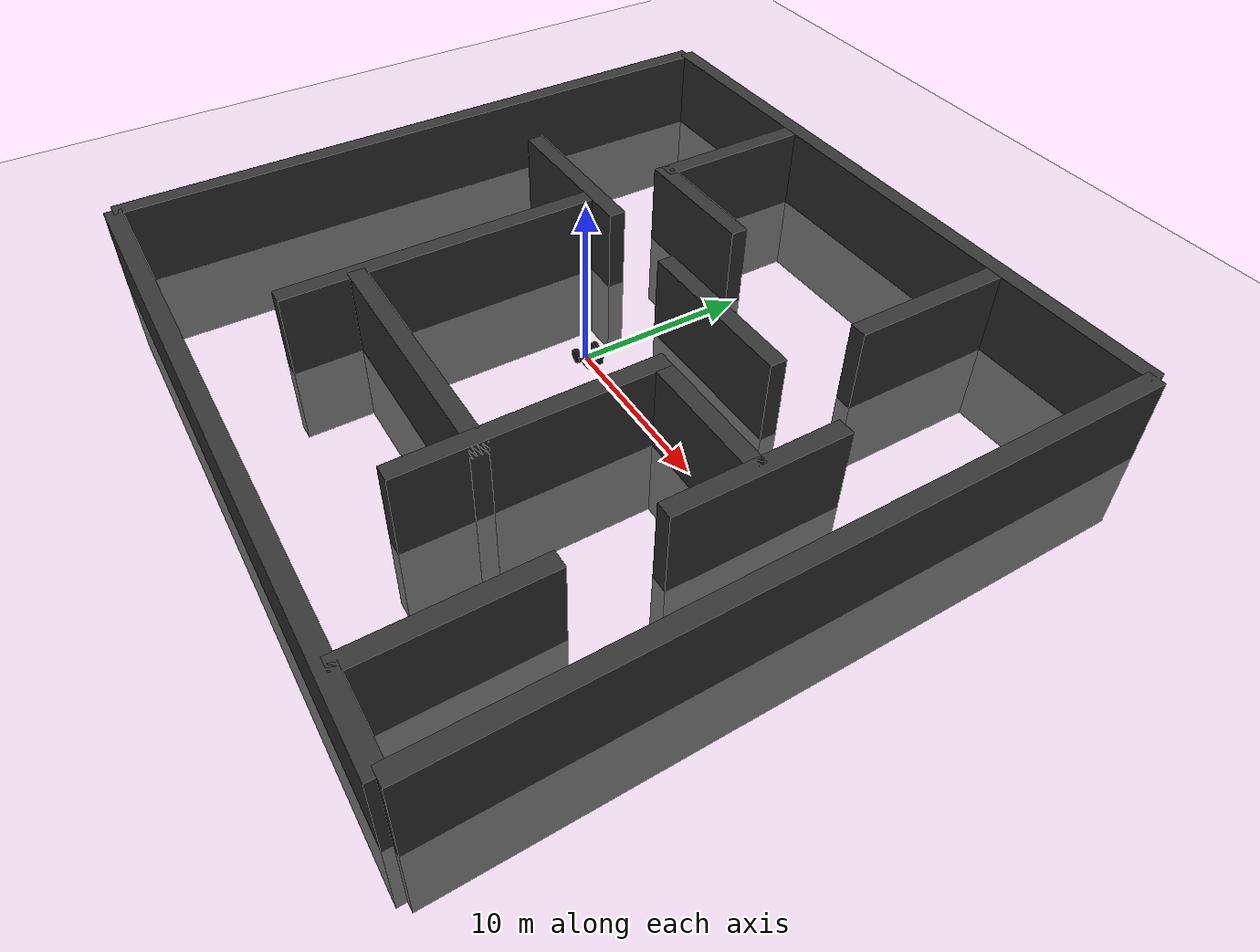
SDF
<?xml version="1.0" ?>
<sdf version='1.9'>
  <world name='test_world'>
    <physics name='1ms' type='ignored'>
      <max_step_size>0.001</max_step_size>
      <real_time_factor>1</real_time_factor>
      <real_time_update_rate>1000</real_time_update_rate>
    </physics>
    <plugin name='ignition::gazebo::systems::Physics' filename='ignition-gazebo-physics-system'/>
    <plugin name='ignition::gazebo::systems::UserCommands' filename='ignition-gazebo-user-commands-system'/>
    <plugin name='ignition::gazebo::systems::SceneBroadcaster' filename='ignition-gazebo-scene-broadcaster-system'/>
    <plugin name='ignition::gazebo::systems::Imu' filename='ignition-gazebo-imu-system'/>
    <plugin name='ignition::gazebo::systems::Sensors' filename='ignition-gazebo-sensors-system'>
      <render_engine>ogre2</render_engine>
    </plugin>
    <plugin name='ignition::gazebo::systems::Contact' filename='ignition-gazebo-contact-system'/>

    <gravity>0 0 -9.8</gravity>
    <magnetic_field>6e-06 2.3e-05 -4.2e-05</magnetic_field>
    <atmosphere type='adiabatic'/>
    <scene>
      <ambient>0.4 0.4 0.4 1</ambient>
      <background>0.7 0.7 0.7 1</background>
      <shadows>true</shadows>
    </scene>

    <model name='ground_plane'>
      <static>true</static>
      <link name='link'>
        <collision name='collision'>
          <geometry>
            <plane>
              <normal>0 0 1</normal>
              <size>1 1</size>
            </plane>
          </geometry>
          <surface>
            <friction>
              <ode/>
            </friction>
            <bounce/>
            <contact/>
          </surface>
        </collision>
        <visual name='visual'>
          <geometry>
            <plane>
              <normal>0 0 1</normal>
              <size>100 100</size>
            </plane>
          </geometry>
          <material>
            <ambient>0.8 0.8 0.8 1</ambient>
            <diffuse>0.8 0.8 0.8 1</diffuse>
            <specular>0.8 0.8 0.8 1</specular>
          </material>
        </visual>
        <pose>0 0 0 0 -0 0</pose>
        <inertial>
          <pose>0 0 0 0 -0 0</pose>
          <mass>1</mass>
          <inertia>
            <ixx>1</ixx>
            <ixy>0</ixy>
            <ixz>0</ixz>
            <iyy>1</iyy>
            <iyz>0</iyz>
            <izz>1</izz>
          </inertia>
        </inertial>
        <enable_wind>false</enable_wind>
      </link>
      <pose>0 0 0 0 -0 0</pose>
      <self_collide>false</self_collide>
    </model>
    <model name='f1d2' canonical_link='chassis'>
      <pose>0 0 0 0 0 0</pose>
      <link name='chassis'>
        <pose>0.5 0 0.4 0 -0 0</pose>
        <inertial>
          <mass>1.14395</mass>
          <inertia>
            <ixx>0.126164</ixx>
            <ixy>0</ixy>
            <ixz>0</ixz>
            <iyy>0.41651</iyy>
            <iyz>0</iyz>
            <izz>0.481014</izz>
          </inertia>
          <pose>0 0 0 0 -0 0</pose>
        </inertial>
        <visual name='visual'>
          <geometry>
            <box>
              <size>1 1 0.5</size>
            </box>
          </geometry>
          <material>
            <ambient>0.1 0.1 0.1 1</ambient>
            <diffuse>0.1 0.1 0.1 1</diffuse>
            <specular>0.1 0.1 0.1 1</specular>
          </material>
        </visual>
        <collision name='collision'>
          <geometry>
            <box>
              <size>1 1 0.5</size>
            </box>
          </geometry>
          <surface>
            <friction>
              <ode/>
            </friction>
            <bounce/>
            <contact/>
          </surface>
        </collision>
        <sensor name='imu_sensor' type='imu'>
          <pose>0 0 0 0 -0 0</pose>
          <topic>imu</topic>
          <update_rate>1</update_rate>
          <enable_metrics>false</enable_metrics>
          <imu>
            <orientation_reference_frame>
              <localization>CUSTOM</localization>
              <custom_rpy>0 0 0</custom_rpy>
              <grav_dir_x>1 0 0</grav_dir_x>
            </orientation_reference_frame>
            <angular_velocity>
              <x>
                <noise type='none'>
                  <mean>0</mean>
                  <stddev>0</stddev>
                  <bias_mean>0</bias_mean>
                  <bias_stddev>0</bias_stddev>
                  <dynamic_bias_stddev>0</dynamic_bias_stddev>
                  <dynamic_bias_correlation_time>0</dynamic_bias_correlation_time>
                  <precision>0</precision>
                </noise>
              </x>
              <y>
                <noise type='none'>
                  <mean>0</mean>
                  <stddev>0</stddev>
                  <bias_mean>0</bias_mean>
                  <bias_stddev>0</bias_stddev>
                  <dynamic_bias_stddev>0</dynamic_bias_stddev>
                  <dynamic_bias_correlation_time>0</dynamic_bias_correlation_time>
                  <precision>0</precision>
                </noise>
              </y>
              <z>
                <noise type='none'>
                  <mean>0</mean>
                  <stddev>0</stddev>
                  <bias_mean>0</bias_mean>
                  <bias_stddev>0</bias_stddev>
                  <dynamic_bias_stddev>0</dynamic_bias_stddev>
                  <dynamic_bias_correlation_time>0</dynamic_bias_correlation_time>
                  <precision>0</precision>
                </noise>
              </z>
            </angular_velocity>
            <linear_acceleration>
              <x>
                <noise type='none'>
                  <mean>0</mean>
                  <stddev>0</stddev>
                  <bias_mean>0</bias_mean>
                  <bias_stddev>0</bias_stddev>
                  <dynamic_bias_stddev>0</dynamic_bias_stddev>
                  <dynamic_bias_correlation_time>0</dynamic_bias_correlation_time>
                  <precision>0</precision>
                </noise>
              </x>
              <y>
                <noise type='none'>
                  <mean>0</mean>
                  <stddev>0</stddev>
                  <bias_mean>0</bias_mean>
                  <bias_stddev>0</bias_stddev>
                  <dynamic_bias_stddev>0</dynamic_bias_stddev>
                  <dynamic_bias_correlation_time>0</dynamic_bias_correlation_time>
                  <precision>0</precision>
                </noise>
              </y>
              <z>
                <noise type='none'>
                  <mean>0</mean>
                  <stddev>0</stddev>
                  <bias_mean>0</bias_mean>
                  <bias_stddev>0</bias_stddev>
                  <dynamic_bias_stddev>0</dynamic_bias_stddev>
                  <dynamic_bias_correlation_time>0</dynamic_bias_correlation_time>
                  <precision>0</precision>
                </noise>
              </z>
            </linear_acceleration>
            <enable_orientation>true</enable_orientation>
          </imu>
        </sensor>
        <enable_wind>false</enable_wind>
      </link>
      <link name='left_wheel'>
        <pose>-0 0.6 0.4 -1.5707 -0 0</pose>
        <inertial>
          <mass>2</mass>
          <inertia>
            <ixx>0.145</ixx>
            <ixy>0</ixy>
            <ixz>0</ixz>
            <iyy>0.145</iyy>
            <iyz>0</iyz>
            <izz>0.125</izz>
          </inertia>
          <pose>0 0 0 0 -0 0</pose>
        </inertial>
        <visual name='visual'>
          <geometry>
            <cylinder>
              <radius>0.4</radius>
              <length>0.2</length>
            </cylinder>
          </geometry>
          <material>
            <ambient>0.1 0.1 0.1 1</ambient>
            <diffuse>0.1 0.1 0.1 1</diffuse>
            <specular>0.1 0.1 0.1 1</specular>
          </material>
        </visual>
        <collision name='collision'>
          <geometry>
            <cylinder>
              <radius>0.4</radius>
              <length>0.2</length>
            </cylinder>
          </geometry>
          <surface>
            <friction>
              <ode/>
            </friction>
            <bounce/>
            <contact/>
          </surface>
        </collision>
        <enable_wind>false</enable_wind>
      </link>
      <link name='right_wheel'>
        <pose>-0 -0.6 0.4 -1.5707 -0 0</pose>
        <inertial>
          <mass>1</mass>
          <inertia>
            <ixx>0.145832</ixx>
            <ixy>0</ixy>
            <ixz>0</ixz>
            <iyy>0.145832</iyy>
            <iyz>0</iyz>
            <izz>0.125</izz>
          </inertia>
          <pose>0 0 0 0 -0 0</pose>
        </inertial>
        <visual name='visual'>
          <geometry>
            <cylinder>
              <radius>0.4</radius>
              <length>0.2</length>
            </cylinder>
          </geometry>
          <material>
            <ambient>0.1 0.1 0.1 1</ambient>
            <diffuse>0.1 0.1 0.1 1</diffuse>
            <specular>0.1 0.1 0.1 1</specular>
          </material>
        </visual>
        <collision name='collision'>
          <geometry>
            <cylinder>
              <radius>0.4</radius>
              <length>0.2</length>
            </cylinder>
          </geometry>
          <surface>
            <friction>
              <ode/>
            </friction>
            <bounce/>
            <contact/>
          </surface>
        </collision>
        <enable_wind>false</enable_wind>
      </link>

      <joint name="lidar_box_joint" type="fixed">
        <parent>chassis</parent>
        <child>lidar_box</child>
      </joint>

      <frame name='lidar_box_frame' attached_to='chassis'>
        <pose>0.0 0 0.3 0 0 0</pose>
      </frame>
      <link name='lidar_box'>
        <pose relative_to='lidar_box_frame'/>

        <static>true</static>
        <inertial>
          <mass>0.3</mass>
          <inertia>
            <ixx>0.01</ixx>
            <ixy>0</ixy>
            <ixz>0</ixz>
            <iyy>0.04</iyy>
            <iyz>0</iyz>
            <izz>0.04</izz>
          </inertia>
          <pose>0 0 0 0 -0 0</pose>
        </inertial>
        <visual name='visual'>
          <geometry>
            <box>
              <size>0.1 0.1 0.1</size>
            </box>
          </geometry>
          <material>
            <ambient>0 0 1 1</ambient>
            <diffuse>0 0 1 1</diffuse>
            <specular>0 0 1 1</specular>
          </material>
        </visual>
        <collision name='collision'>
          <geometry>
            <box>
              <size>0.1 0.1 0.1</size>
            </box>
          </geometry>
          <surface>
            <friction>
              <ode/>
            </friction>
            <bounce/>
            <contact/>
          </surface>
        </collision>
        <sensor name='gpu_lidar' type='gpu_lidar'>

          <topic>scan</topic>
          <update_rate>10</update_rate>
          <enable_metrics>false</enable_metrics>
          <lidar>
            <scan>
              <horizontal>
                <samples>640</samples>
                <resolution>1</resolution>
                <min_angle>-2.355</min_angle>
                <max_angle>2.355</max_angle>
              </horizontal>
              <vertical>
                <samples>1</samples>
                <min_angle>0</min_angle>
                <max_angle>0</max_angle>
                <resolution>0.01</resolution>
              </vertical>
            </scan>
            <range>
              <min>0.08</min>
              <max>30</max>
              <resolution>0.01</resolution>
            </range>
            <noise>
              <type>none</type>
              <mean>0</mean>
              <stddev>0</stddev>
            </noise>
            <visibility_mask>4294967295</visibility_mask>
          </lidar>
        </sensor>

    </link>
    <joint name="camera_box_joint" type="fixed">
        <parent>chassis</parent>
        <child>camera_box</child>
    </joint>
    <frame name='camera_box_frame' attached_to='chassis'>
        <pose>0.5 0 0.15 0 0 0</pose>
    </frame>
    <link name='camera_box'>
        <pose relative_to='camera_box_frame'/>
        <static>true</static>
        <inertial>
          <mass>0.3</mass>
          <inertia>
            <ixx>0.01</ixx>
            <ixy>0</ixy>
            <ixz>0</ixz>
            <iyy>0.04</iyy>
            <iyz>0</iyz>
            <izz>0.04</izz>
          </inertia>
          <pose>0 0 0 0 -0 0</pose>
        </inertial>
        <visual name='visual'>
          <geometry>
            <box>
              <size>0.05 0.15 0.05</size>
            </box>
          </geometry>
          <material>
            <ambient>0 0 1 1</ambient>
            <diffuse>0 0 1 1</diffuse>
            <specular>0 0 1 1</specular>
          </material>
        </visual>
        <collision name='collision'>
          <geometry>
            <box>
              <size>0.05 0.15 0.05</size>
            </box>
          </geometry>
          <surface>
            <friction>
              <ode/>
            </friction>
            <bounce/>
            <contact/>
          </surface>
        </collision>
        <sensor name='camera' type='camera'>
          <topic>/camera_front/image_raw</topic>
          <update_rate>10</update_rate>
          <enable_metrics>false</enable_metrics>
          <camera name='__default__'>
            <pose>0 0 0 0 -0 0</pose>
            <horizontal_fov>1.396261</horizontal_fov>
            <image>
              <width>600</width>
              <height>600</height>
              <format>RGB_INT8</format>
              <anti_aliasing>4</anti_aliasing>
            </image>
            <camera_info_topic>__default__</camera_info_topic>
            <trigger_topic></trigger_topic>
            <triggered>false</triggered>
            <clip>
              <near>0.02</near>
              <far>300</far>
            </clip>
            <save enabled='false'>
              <path>__default__</path>
            </save>
            <visibility_mask>4294967295</visibility_mask>
            <noise>
              <type>none</type>
              <mean>0</mean>
              <stddev>0</stddev>
            </noise>
            <distortion>
              <k1>0</k1>
              <k2>0</k2>
              <k3>0</k3>
              <p1>0</p1>
              <p2>0</p2>
              <center>0.5 0.5</center>
            </distortion>
            <lens>
              <type>stereographic</type>
              <scale_to_hfov>true</scale_to_hfov>
              <cutoff_angle>1.5708</cutoff_angle>
              <env_texture_size>256</env_texture_size>
            </lens>
            <optical_frame_id></optical_frame_id>
          </camera>
        </sensor>
        <sensor name='depth_camera' type='depth_camera'>
          <topic>/camera_front/depth_image_raw</topic>
          <update_rate>10</update_rate>
          <enable_metrics>false</enable_metrics>
          <camera name='__default__'>
            <pose>0 0 0 0 -0 0</pose>
            <horizontal_fov>1.046</horizontal_fov>
            <image>
              <width>320</width>
              <height>240</height>
              <format>R_FLOAT32</format>
              <anti_aliasing>4</anti_aliasing>
            </image>
            <camera_info_topic>__default__</camera_info_topic>
            <trigger_topic></trigger_topic>
            <triggered>false</triggered>
            <clip>
              <near>0.1</near>
              <far>100</far>
            </clip>
            <save enabled='false'>
              <path>__default__</path>
            </save>
            <visibility_mask>4294967295</visibility_mask>
            <noise>
              <type>none</type>
              <mean>0</mean>
              <stddev>0</stddev>
            </noise>
            <distortion>
              <k1>0</k1>
              <k2>0</k2>
              <k3>0</k3>
              <p1>0</p1>
              <p2>0</p2>
              <center>0.5 0.5</center>
            </distortion>
            <lens>
              <type>stereographic</type>
              <scale_to_hfov>true</scale_to_hfov>
              <cutoff_angle>1.5708</cutoff_angle>
              <env_texture_size>256</env_texture_size>
            </lens>
            <optical_frame_id></optical_frame_id>
          </camera>
        </sensor>

    </link>

      <frame name='caster_frame' attached_to='chassis'>
        <pose>0.3 0 -0.2 0 0 0</pose>
      </frame>
      <link name='caster'>
        <pose relative_to='caster_frame'/>
        <inertial>
          <mass>1</mass>
          <inertia>
            <ixx>0.1</ixx>

            <ixy>0</ixy>
            <ixz>0</ixz>
            <iyy>0.1</iyy>
            <iyz>0</iyz>
            <izz>0.1</izz>
          </inertia>
          <pose>0 0 0 0 -0 0</pose>
        </inertial>
        <visual name='visual'>
          <geometry>
            <sphere>
              <radius>0.2</radius>
            </sphere>
          </geometry>
          <material>
            <ambient>0.1 0.1 0.1 1</ambient>
            <diffuse>0.1 0.1 0.1 1</diffuse>
            <specular>0.1 0.1 0.1 1</specular>
          </material>
        </visual>
        <collision name='collision'>
          <geometry>
            <sphere>
              <radius>0.2</radius>
            </sphere>
          </geometry>
          <surface>
            <friction>
              <ode/>
            </friction>
            <bounce/>
            <contact/>
          </surface>
        </collision>
        <enable_wind>false</enable_wind>
      </link>
      <joint name='left_wheel_joint' type='revolute'>
        <pose>0 0 0 0 -0 0</pose>
        <parent>chassis</parent>
        <child>left_wheel</child>
        <axis>
          <xyz>0 9.6e-05 1</xyz>
          <limit>
            <lower>-1.7976900000000001e+308</lower>
            <upper>1.7976900000000001e+308</upper>
            <effort>inf</effort>
            <velocity>inf</velocity>
            <stiffness>100000000</stiffness>
            <dissipation>1</dissipation>
          </limit>
          <dynamics>
            <spring_reference>0</spring_reference>
            <spring_stiffness>0</spring_stiffness>
            <damping>0</damping>
            <friction>0</friction>
          </dynamics>
        </axis>
      </joint>
      <joint name='right_wheel_joint' type='revolute'>
        <pose>0 0 0 0 -0 0</pose>
        <parent>chassis</parent>
        <child>right_wheel</child>
        <axis>
          <xyz>0 9.6e-05 1</xyz>
          <limit>
            <lower>-1.7976900000000001e+308</lower>
            <upper>1.7976900000000001e+308</upper>
            <effort>inf</effort>
            <velocity>inf</velocity>
            <stiffness>100000000</stiffness>
            <dissipation>1</dissipation>
          </limit>
          <dynamics>
            <spring_reference>0</spring_reference>
            <spring_stiffness>0</spring_stiffness>
            <damping>0</damping>
            <friction>0</friction>
          </dynamics>
        </axis>
      </joint>
      <joint name='caster_wheel' type='ball'>
        <parent>chassis</parent>
        <child>caster</child>
        <pose>0 0 0 0 -0 0</pose>
      </joint>
      <plugin name='ignition::gazebo::systems::DiffDrive' filename='ignition-gazebo-diff-drive-system'>
        <left_joint>left_wheel_joint</left_joint>
        <right_joint>right_wheel_joint</right_joint>
        <wheel_separation>1.2</wheel_separation>
        <wheel_radius>0.4</wheel_radius>
        <odom_publish_frequency>1</odom_publish_frequency>
        <topic>cmd_vel</topic>
      </plugin>
      <static>false</static>
      <self_collide>false</self_collide>
    </model>

    <model name='length_wall_right'>
      <pose>0 -20 0 0 -0 0</pose>
      <link name='box_link'>
        <inertial>
          <mass>1.14395</mass>
          <inertia>
            <ixx>9.5329</ixx>
            <ixy>0</ixy>
            <ixz>0</ixz>
            <iyy>0.0238</iyy>
            <iyz>0</iyz>
            <izz>9.5567</izz>
          </inertia>
          <pose>0 0 0 0 -0 0</pose>
        </inertial>
        <collision name='box_collision'>
          <geometry>
            <box>
              <size>40 1 10</size>
            </box>
          </geometry>
          <surface>
            <friction>
              <ode/>
            </friction>
            <bounce/>
            <contact/>
          </surface>
        </collision>
        <visual name='box_visual'>
          <geometry>
            <box>
              <size>40 1 10</size>
            </box>
          </geometry>
          <material>
            <ambient>0.2 0.2 0.2 1</ambient>
            <diffuse>0.2 0.2 0.2 1</diffuse>
            <specular>0.2 0.2 0.2 1</specular>
          </material>
        </visual>
        <pose>0 0 0 0 -0 0</pose>
        <enable_wind>false</enable_wind>
      </link>
      <static>true</static>
      <self_collide>false</self_collide>
    </model>
    <model name='length_wall_left'>
      <pose>0 20 0 0 -0 0</pose>
      <link name='box_link'>
        <inertial>
          <mass>1.14395</mass>
          <inertia>
            <ixx>9.5329</ixx>
            <ixy>0</ixy>
            <ixz>0</ixz>
            <iyy>0.0238</iyy>
            <iyz>0</iyz>
            <izz>9.5567</izz>
          </inertia>
          <pose>0 0 0 0 -0 0</pose>
        </inertial>
        <collision name='box_collision'>
          <geometry>
            <box>
              <size>40 1 10</size>
            </box>
          </geometry>
          <surface>
            <friction>
              <ode/>
            </friction>
            <bounce/>
            <contact/>
          </surface>
        </collision>
        <visual name='box_visual'>
          <geometry>
            <box>
              <size>40 1 10</size>
            </box>
          </geometry>
          <material>
            <ambient>0.2 0.2 0.2 1</ambient>
            <diffuse>0.2 0.2 0.2 1</diffuse>
            <specular>0.2 0.2 0.2 1</specular>
          </material>
        </visual>
        <pose>0 0 0 0 -0 0</pose>
        <enable_wind>false</enable_wind>
      </link>
      <static>true</static>
      <self_collide>false</self_collide>
    </model>

    <model name='width_wall_right'>
      <pose>-20 0 0 0 -0 0</pose>
      <link name='box_link'>
        <inertial>
          <inertia>
            <ixx>0.16666</ixx>
            <ixy>0</ixy>
            <ixz>0</ixz>
            <iyy>0.16666</iyy>
            <iyz>0</iyz>
            <izz>0.16666</izz>
          </inertia>
          <mass>1000</mass>
          <pose>0 0 0 0 -0 0</pose>
        </inertial>
        <collision name='box_collision'>
          <geometry>
            <box>
              <size>1 40 10</size>
            </box>
          </geometry>
          <surface>
            <friction>
              <ode/>
            </friction>
            <bounce/>
            <contact/>
          </surface>
        </collision>
        <visual name='box_visual'>
          <geometry>
            <box>
              <size>1 40 10</size>
            </box>
          </geometry>
          <material>
            <ambient>0.2 0.2 0.2 1</ambient>
            <diffuse>0.2 0.2 0.2 1</diffuse>
            <specular>0.2 0.2 0.2 1</specular>
          </material>
        </visual>
        <pose>0 0 0 0 -0 0</pose>
        <enable_wind>false</enable_wind>
      </link>
      <static>true</static>
      <self_collide>false</self_collide>
    </model>
    <model name='width_wall_left'>
      <pose>20 0 0 0 -0 0</pose>
      <link name='box_link'>
        <inertial>
          <inertia>
            <ixx>0.16666</ixx>
            <ixy>0</ixy>
            <ixz>0</ixz>
            <iyy>0.16666</iyy>
            <iyz>0</iyz>
            <izz>0.16666</izz>
          </inertia>
          <mass>1000</mass>
          <pose>0 0 0 0 -0 0</pose>
        </inertial>
        <collision name='box_collision'>
          <geometry>
            <box>
              <size>1 40 10</size>
            </box>
          </geometry>
          <surface>
            <friction>
              <ode/>
            </friction>
            <bounce/>
            <contact/>
          </surface>
        </collision>
        <visual name='box_visual'>
          <geometry>
            <box>
              <size>1 40 10</size>
            </box>
          </geometry>
          <material>
            <ambient>0.2 0.2 0.2 1</ambient>
            <diffuse>0.2 0.2 0.2 1</diffuse>
            <specular>0.2 0.2 0.2 1</specular>
          </material>
        </visual>
        <pose>0 0 0 0 -0 0</pose>
        <enable_wind>false</enable_wind>
      </link>
      <static>true</static>
      <self_collide>false</self_collide>
    </model>

    <!--each aisle -->

    <model name='aisles'>
      <link name='top_from_right_to_middle_width'>
        <pose>15 -15 0 0 0 0</pose>
        <inertial>
          <mass>1000</mass>
          <inertia>
            <ixx>9.5329</ixx>
            <ixy>0</ixy>
            <ixz>0</ixz>
            <iyy>0.0238</iyy>
            <iyz>0</iyz>
            <izz>9.5567</izz>
          </inertia>
          <pose>0 0 0 0 -0 0</pose>
        </inertial>
        <collision name='box_collision'>
          <geometry>
            <box>
              <size>1 10 10</size>
            </box>
          </geometry>
          <surface>
            <friction>
              <ode/>
            </friction>
            <bounce/>
            <contact/>
          </surface>
        </collision>
        <visual name='box_visual'>
          <geometry>
            <box>
              <size>1 10 10</size>
            </box>
          </geometry>
          <material>
            <ambient>0.2 0.2 0.2 1</ambient>
            <diffuse>0.2 0.2 0.2 1</diffuse>
            <specular>0.2 0.2 0.2 1</specular>
          </material>
        </visual>
        <pose>0 0 0 0 -0 0</pose>
        <enable_wind>false</enable_wind>
      </link>
      <link name='top_middle_width'>
        <pose>15 0 0 0 0 0</pose>
        <inertial>
          <mass>1000</mass>
          <inertia>
            <ixx>9.5329</ixx>
            <ixy>0</ixy>
            <ixz>0</ixz>
            <iyy>0.0238</iyy>
            <iyz>0</iyz>
            <izz>9.5567</izz>
          </inertia>
          <pose>0 0 0 0 -0 0</pose>
        </inertial>
        <collision name='box_collision'>
          <geometry>
            <box>
              <size>1 10 10</size>
            </box>
          </geometry>
          <surface>
            <friction>
              <ode/>
            </friction>
            <bounce/>
            <contact/>
          </surface>
        </collision>
        <visual name='box_visual'>
          <geometry>
            <box>
              <size>1 10 10</size>
            </box>
          </geometry>
          <material>
            <ambient>0.2 0.2 0.2 1</ambient>
            <diffuse>0.2 0.2 0.2 1</diffuse>
            <specular>0.2 0.2 0.2 1</specular>
          </material>
        </visual>
        <pose>0 0 0 0 -0 0</pose>
        <enable_wind>false</enable_wind>
      </link>
      <link name='top_left_length'>
        <pose>10 15 0 0 0 0</pose>
        <inertial>
          <mass>1000</mass>
          <inertia>
            <ixx>9.5329</ixx>
            <ixy>0</ixy>
            <ixz>0</ixz>
            <iyy>0.0238</iyy>
            <iyz>0</iyz>
            <izz>9.5567</izz>
          </inertia>
          <pose>0 0 0 0 -0 0</pose>
        </inertial>
        <collision name='box_collision'>
          <geometry>
            <box>
              <size>1 10 10</size>
            </box>
          </geometry>
          <surface>
            <friction>
              <ode/>
            </friction>
            <bounce/>
            <contact/>
          </surface>
        </collision>
        <visual name='box_visual'>
          <geometry>
            <box>
              <size>1 10 10</size>
            </box>
          </geometry>
          <material>
            <ambient>0.2 0.2 0.2 1</ambient>
            <diffuse>0.2 0.2 0.2 1</diffuse>
            <specular>0.2 0.2 0.2 1</specular>
          </material>
        </visual>
        <pose>0 0 0 0 -0 0</pose>
        <enable_wind>false</enable_wind>
      </link>
      <link name='middle_length'>
        <pose>11 0 0 0 0 0</pose>
        <inertial>
          <mass>1000</mass>
          <inertia>
            <ixx>9.5329</ixx>
            <ixy>0</ixy>
            <ixz>0</ixz>
            <iyy>0.0238</iyy>
            <iyz>0</iyz>
            <izz>9.5567</izz>
          </inertia>
          <pose>0 0 0 0 -0 0</pose>
        </inertial>
        <collision name='box_collision'>
          <geometry>
            <box>
              <size>8 1 10</size>
            </box>
          </geometry>
          <surface>
            <friction>
              <ode/>
            </friction>
            <bounce/>
            <contact/>
          </surface>
        </collision>
        <visual name='box_visual'>
          <geometry>
            <box>
              <size>8 1 10</size>
            </box>
          </geometry>
          <material>
            <ambient>0.2 0.2 0.2 1</ambient>
            <diffuse>0.2 0.2 0.2 1</diffuse>
            <specular>0.2 0.2 0.2 1</specular>
          </material>
        </visual>
        <pose>0 0 0 0 -0 0</pose>
        <enable_wind>false</enable_wind>
      </link>

      <link name='middle_width'>
        <pose>7 -7 0 0 0 0</pose>
        <inertial>
          <mass>1000</mass>
          <inertia>
            <ixx>9.5329</ixx>
            <ixy>0</ixy>
            <ixz>0</ixz>
            <iyy>0.0238</iyy>
            <iyz>0</iyz>
            <izz>9.5567</izz>
          </inertia>
          <pose>0 0 0 0 -0 0</pose>
        </inertial>
        <collision name='box_collision'>
          <geometry>
            <box>
              <size>1 15 10</size>
            </box>
          </geometry>
          <surface>
            <friction>
              <ode/>
            </friction>
            <bounce/>
            <contact/>
          </surface>
        </collision>
        <visual name='box_visual'>
          <geometry>
            <box>
              <size>1 15 10</size>
            </box>
          </geometry>
          <material>
            <ambient>0.2 0.2 0.2 1</ambient>
            <diffuse>0.2 0.2 0.2 1</diffuse>
            <specular>0.2 0.2 0.2 1</specular>
          </material>
        </visual>
        <pose>0 0 0 0 -0 0</pose>
        <enable_wind>false</enable_wind>
      </link>
      <link name='middle_left_length'>
        <pose>5 5 0 0 0 0</pose>
        <inertial>
          <mass>1000</mass>
          <inertia>
            <ixx>9.5329</ixx>
            <ixy>0</ixy>
            <ixz>0</ixz>
            <iyy>0.0238</iyy>
            <iyz>0</iyz>
            <izz>9.5567</izz>
          </inertia>
          <pose>0 0 0 0 -0 0</pose>
        </inertial>
        <collision name='box_collision'>
          <geometry>
            <box>
              <size>10 1 10</size>
            </box>
          </geometry>
          <surface>
            <friction>
              <ode/>
            </friction>
            <bounce/>
            <contact/>
          </surface>
        </collision>
        <visual name='box_visual'>
          <geometry>
            <box>
              <size>10 1 10</size>
            </box>
          </geometry>
          <material>
            <ambient>0.2 0.2 0.2 1</ambient>
            <diffuse>0.2 0.2 0.2 1</diffuse>
            <specular>0.2 0.2 0.2 1</specular>
          </material>
        </visual>
        <pose>0 0 0 0 -0 0</pose>
        <enable_wind>false</enable_wind>
      </link>

      <link name='low_left_length'>
        <pose>-10 5 0 0 0 0</pose>
        <inertial>
          <mass>1000</mass>
          <inertia>
            <ixx>9.5329</ixx>
            <ixy>0</ixy>
            <ixz>0</ixz>
            <iyy>0.0238</iyy>
            <iyz>0</iyz>
            <izz>9.5567</izz>
          </inertia>
          <pose>0 0 0 0 -0 0</pose>
        </inertial>
        <collision name='box_collision'>
          <geometry>
            <box>
              <size>10 1 10</size>
            </box>
          </geometry>
          <surface>
            <friction>
              <ode/>
            </friction>
            <bounce/>
            <contact/>
          </surface>
        </collision>
        <visual name='box_visual'>
          <geometry>
            <box>
              <size>10 1 10</size>
            </box>
          </geometry>
          <material>
            <ambient>0.2 0.2 0.2 1</ambient>
            <diffuse>0.2 0.2 0.2 1</diffuse>
            <specular>0.2 0.2 0.2 1</specular>
          </material>
        </visual>
        <pose>0 0 0 0 -0 0</pose>
        <enable_wind>false</enable_wind>
      </link>

      <link name='left_blind alley_left_wall'>
        <pose>-4 10 0 0 0 0</pose>
        <inertial>
          <mass>1000</mass>
          <inertia>
            <ixx>9.5329</ixx>
            <ixy>0</ixy>
            <ixz>0</ixz>
            <iyy>0.0238</iyy>
            <iyz>0</iyz>
            <izz>9.5567</izz>
          </inertia>
          <pose>0 0 0 0 -0 0</pose>
        </inertial>
        <collision name='box_collision'>
          <geometry>
            <box>
              <size>8 1 10</size>
            </box>
          </geometry>
          <surface>
            <friction>
              <ode/>
            </friction>
            <bounce/>
            <contact/>
          </surface>
        </collision>
        <visual name='box_visual'>
          <geometry>
            <box>
              <size>8 1 10</size>
            </box>
          </geometry>
          <material>
            <ambient>0.2 0.2 0.2 1</ambient>
            <diffuse>0.2 0.2 0.2 1</diffuse>
            <specular>0.2 0.2 0.2 1</specular>
          </material>
        </visual>
        <pose>0 0 0 0 -0 0</pose>
        <enable_wind>false</enable_wind>
      </link>
      <link name='left_blind alley_bottom_wall'>
        <pose>-7.5 15 0 0 0 0</pose>
        <inertial>
          <mass>1000</mass>
          <inertia>
            <ixx>9.5329</ixx>
            <ixy>0</ixy>
            <ixz>0</ixz>
            <iyy>0.0238</iyy>
            <iyz>0</iyz>
            <izz>9.5567</izz>
          </inertia>
          <pose>0 0 0 0 -0 0</pose>
        </inertial>
        <collision name='box_collision'>
          <geometry>
            <box>
              <size>1 10 10</size>
            </box>
          </geometry>
          <surface>
            <friction>
              <ode/>
            </friction>
            <bounce/>
            <contact/>
          </surface>
        </collision>
        <visual name='box_visual'>
          <geometry>
            <box>
              <size>1 10 10</size>
            </box>
          </geometry>
          <material>
            <ambient>0.2 0.2 0.2 1</ambient>
            <diffuse>0.2 0.2 0.2 1</diffuse>
            <specular>0.2 0.2 0.2 1</specular>
          </material>
        </visual>
        <pose>0 0 0 0 -0 0</pose>
        <enable_wind>false</enable_wind>
      </link>
      <link name='left_bottom_width'>
        <pose>-7.5 -5 0 0 0 0</pose>
        <inertial>
          <mass>1000</mass>
          <inertia>
            <ixx>9.5329</ixx>
            <ixy>0</ixy>
            <ixz>0</ixz>
            <iyy>0.0238</iyy>
            <iyz>0</iyz>
            <izz>9.5567</izz>
          </inertia>
          <pose>0 0 0 0 -0 0</pose>
        </inertial>
        <collision name='box_collision'>
          <geometry>
            <box>
              <size>1 19 10</size>
            </box>
          </geometry>
          <surface>
            <friction>
              <ode/>
            </friction>
            <bounce/>
            <contact/>
          </surface>
        </collision>
        <visual name='box_visual'>
          <geometry>
            <box>
              <size>1 19 10</size>
            </box>
          </geometry>
          <material>
            <ambient>0.2 0.2 0.2 1</ambient>
            <diffuse>0.2 0.2 0.2 1</diffuse>
            <specular>0.2 0.2 0.2 1</specular>
          </material>
        </visual>
        <pose>0 0 0 0 -0 0</pose>
        <enable_wind>false</enable_wind>
      </link>

      <link name='right_middle_length'>
        <pose>0 -10 0 0 0 0</pose>
        <inertial>
          <mass>1000</mass>
          <inertia>
            <ixx>9.5329</ixx>
            <ixy>0</ixy>
            <ixz>0</ixz>
            <iyy>0.0238</iyy>
            <iyz>0</iyz>
            <izz>9.5567</izz>
          </inertia>
          <pose>0 0 0 0 -0 0</pose>
        </inertial>
        <collision name='box_collision'>
          <geometry>
            <box>
              <size>15 1 10</size>
            </box>
          </geometry>
          <surface>
            <friction>
              <ode/>
            </friction>
            <bounce/>
            <contact/>
          </surface>
        </collision>
        <visual name='box_visual'>
          <geometry>
            <box>
              <size>15 1 10</size>
            </box>
          </geometry>
          <material>
            <ambient>0.2 0.2 0.2 1</ambient>
            <diffuse>0.2 0.2 0.2 1</diffuse>
            <specular>0.2 0.2 0.2 1</specular>
          </material>
        </visual>
        <pose>0 0 0 0 -0 0</pose>
        <enable_wind>false</enable_wind>
      </link>

      <static>true</static>
      <self_collide>false</self_collide>
    </model>

    <light name='sun' type='directional'>
      <pose>0 0 10 0 -0 0</pose>
      <cast_shadows>true</cast_shadows>
      <intensity>1</intensity>
      <direction>-0.5 0.1 -0.9</direction>
      <diffuse>0.8 0.8 0.8 1</diffuse>
      <specular>0.2 0.2 0.2 1</specular>
      <attenuation>
        <range>1000</range>
        <linear>0.01</linear>
        <constant>0.9</constant>
        <quadratic>0.001</quadratic>
      </attenuation>
      <spot>
        <inner_angle>0</inner_angle>
        <outer_angle>0</outer_angle>
        <falloff>0</falloff>
      </spot>
    </light>
  </world>
</sdf>
